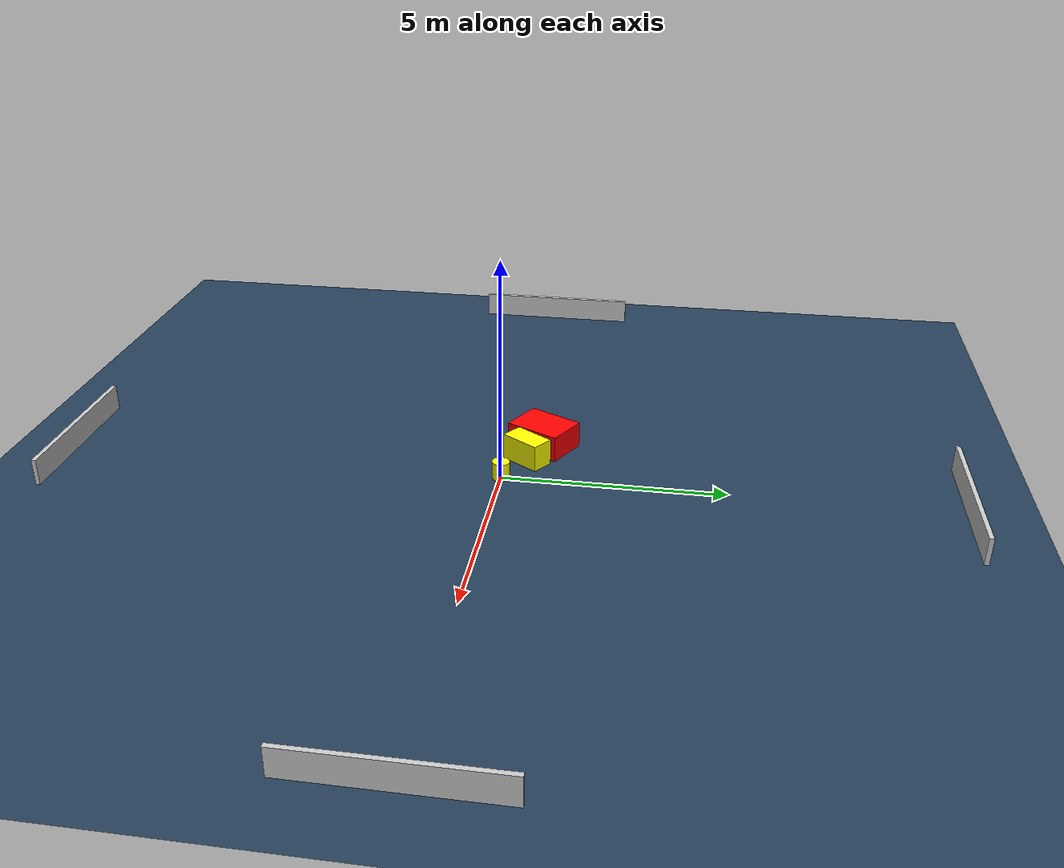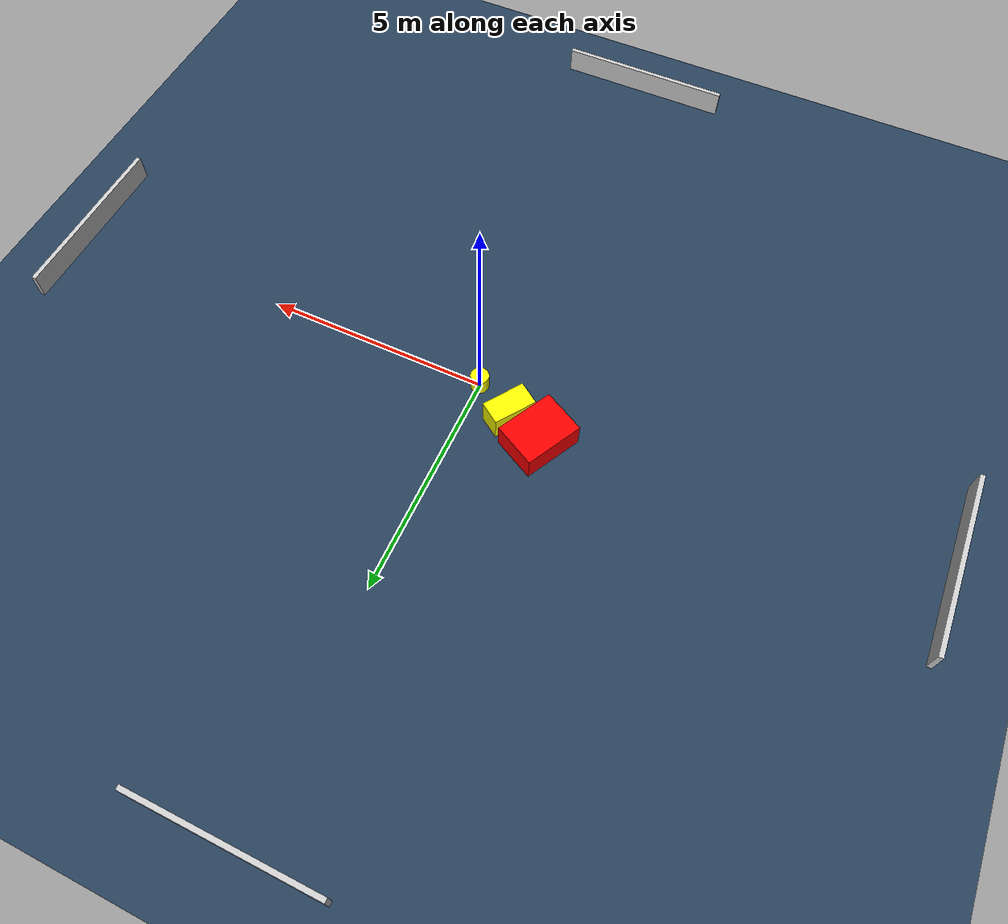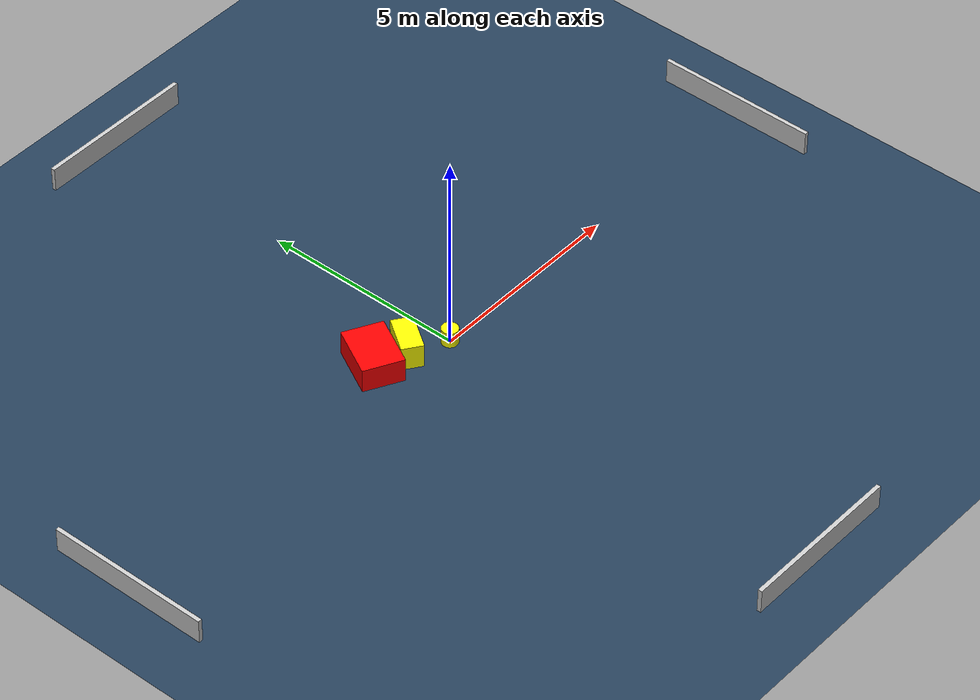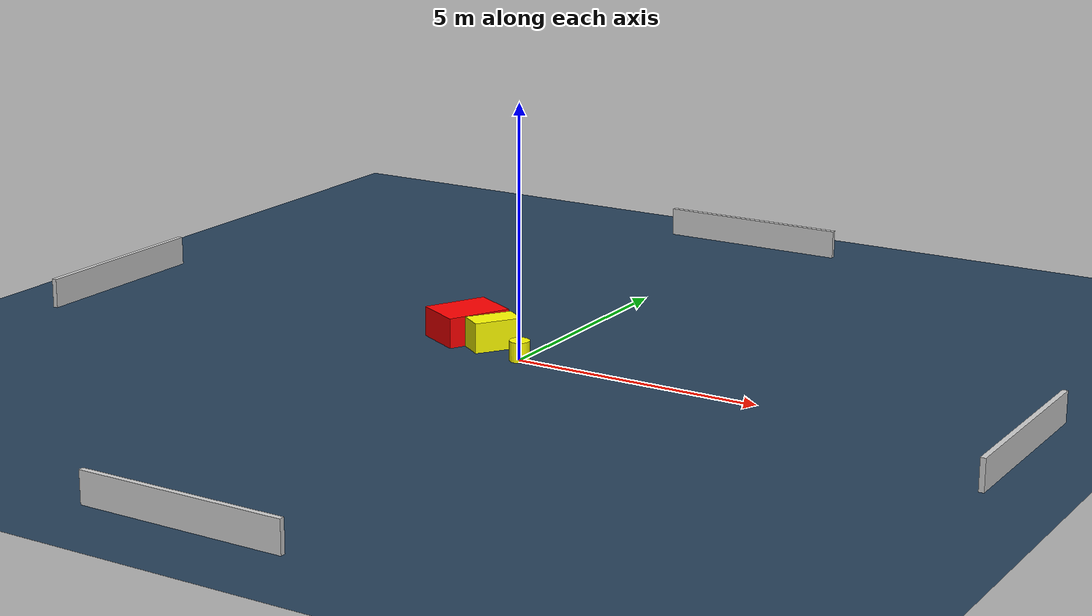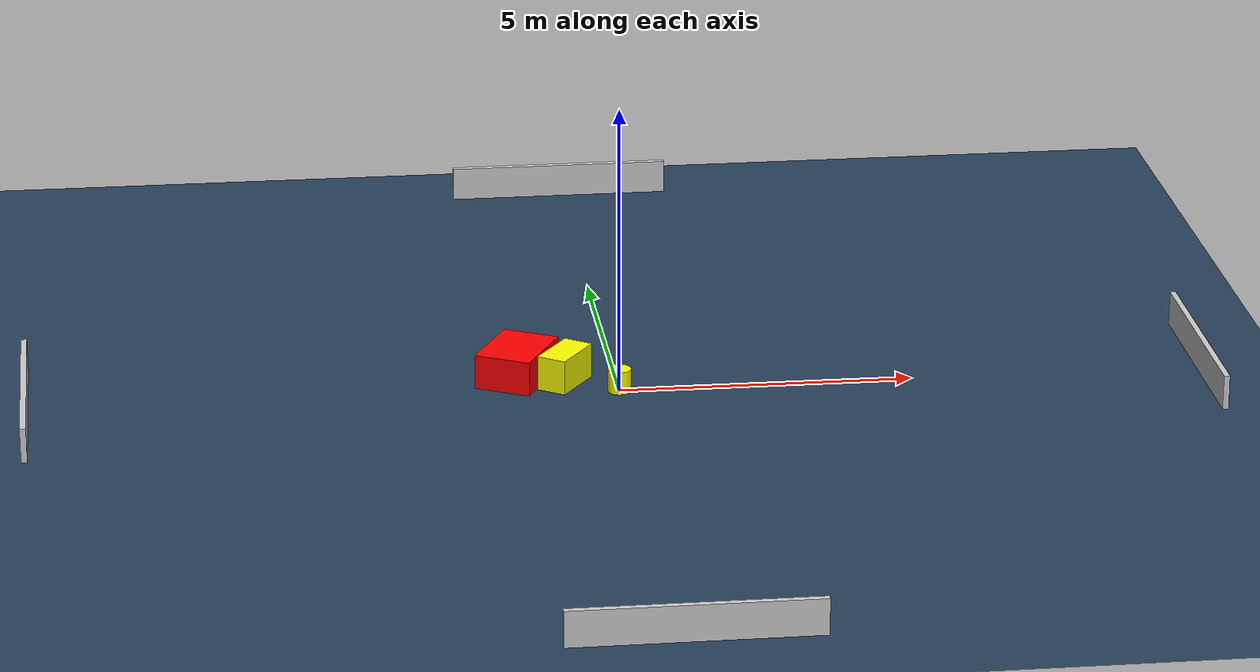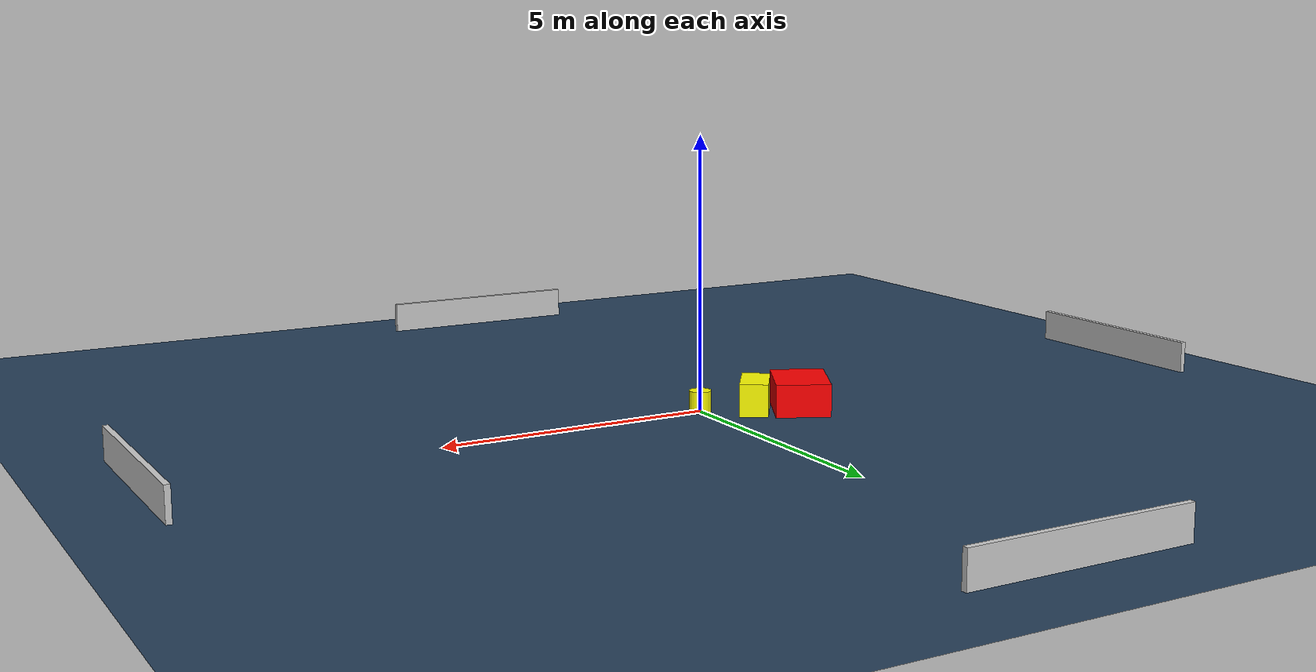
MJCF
<?xml version="1.0" ?>
<mujoco model="generated_environment">
  <option timestep="0.01" integrator="RK4" cone="elliptic"/>
  <default>
    <geom density="1"/>
  </default>
  <asset>
    <texture builtin="gradient" height="3072" name="skybox" rgb1="0.3 0.5 0.7" rgb2="0 0 0" type="skybox" width="512"/>
    <texture builtin="checker" height="300" name="groundplane" rgb1="0.2 0.3 0.4" rgb2="0.1 0.2 0.3" type="2d" width="300"/>
    <material name="groundplane" reflectance="0.2" texrepeat="5 5" texture="groundplane"/>
  </asset>
  <worldbody>
    <light dir="0 0 -1" directional="true" pos="0 0 1.5"/>
    <geom condim="3" friction="0.5 0.005 0.001" material="groundplane" name="floor" pos="0 0 0" size="0 0 0.05" type="plane"/>
    <body name="walls">
      <geom name="wall_1" condim="4" pos="-10.0 0.0 0.3" rgba="0.800000011920929 0.800000011920929 0.800000011920929 1.0" size="0.05 2.0 0.3" type="box"/>
      <geom name="wall_2" condim="4" pos="10.0 0.0 0.3" rgba="0.800000011920929 0.800000011920929 0.800000011920929 1.0" size="0.05 2.0 0.3" type="box"/>
      <geom name="wall_3" condim="4" pos="0.0 -10.0 0.3" rgba="0.800000011920929 0.800000011920929 0.800000011920929 1.0" size="2.0 0.05 0.3" type="box"/>
      <geom name="wall_4" condim="4" pos="0.0 10.0 0.3" rgba="0.800000011920929 0.800000011920929 0.800000011920929 1.0" size="2.0 0.05 0.3" type="box"/>
    </body>
    <body name="robot">
      <joint name="joint_x" type="slide" pos="0 0 0" axis="1 0 0"/>
      <joint name="joint_y" type="slide" pos="0 0 0" axis="0 1 0"/>
      <geom name="robot" type="cylinder" pos="0.0 0.0 0.2" size="0.2 0.2 0.0" mass="5.0" friction="1.0 0.005 0.0001" condim="4" rgba="1.0 1.0 0.0 1.0"/>
    </body>
    <body name="obstacle_1_movable">
      <geom name="obstacle_1_movable" condim="4" pos="-0.8801340647816402 0.4550749181292795 0.3" euler="0 0 235.38164193757376" friction="0.0 0.005 0.001" rgba="1.0 1.0 0.0 1.0" size="0.48163876934678895 0.26049666634683843 0.3" type="box" mass="0.1"/>
      <joint type="free"/>
    </body>
    <body name="obstacle_2_static">
      <geom name="obstacle_2_static" condim="4" pos="-1.6721657996532393 0.7360076203087682 0.3" euler="0 0 332.22767221973" friction="0.0 0.005 0.001" rgba="1.0 0.0 0.0 1.0" size="0.4980551170476336 0.6583403101367731 0.3" type="box"/>
    </body>
  </worldbody>
  <actuator>
    <motor name="actuator_x" joint="joint_x" gear="1" ctrlrange="-1 1"/>
    <motor name="actuator_y" joint="joint_y" gear="1" ctrlrange="-1 1"/>
  </actuator>
</mujoco>
